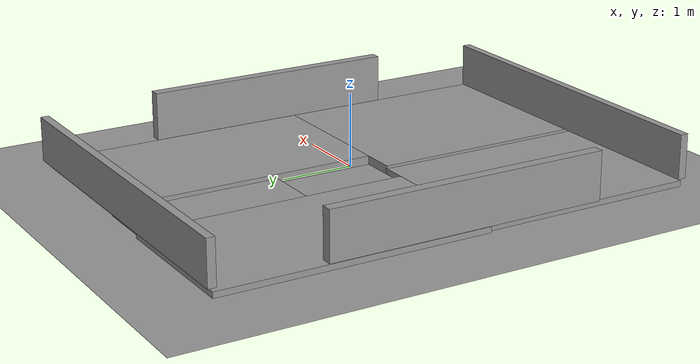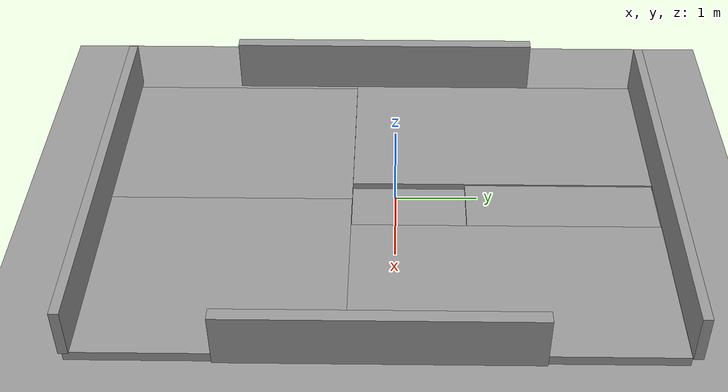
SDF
<?xml version="1.0"?>
<sdf version="1.6">
	<model name="Arena">
		<link name="link_0">
			<inertial>
				<mass>
					0.894395
				</mass>
				<inertia>
					<ixx>
						0.697023
					</ixx>
					<ixy>
						0
					</ixy>
					<ixz>
						0
					</ixz>
					<iyy>
						0.431223
					</iyy>
					<iyz>
						0
					</iyz>
					<izz>
						1.12603
					</izz>
				</inertia>
				<pose frame="">
					0 0 0 0 -0 0
				</pose>
			</inertial>
			<pose frame="">
				-1.2333 -2.05926 -0.176665 0 -0 0
			</pose>
			<visual name="visual">
				<pose frame="">
					0 0 0 0 -0 0
				</pose>
				<geometry>
					<box>
						<size>
							2.40225 3.05565 0.121892
						</size>
					</box>
				</geometry>
				<material>
					<lighting>
						1
					</lighting>
					<script>
						<uri>
							file://media/materials/scripts/gazebo.material
						</uri>
						<name>
							Gazebo/Grey
						</name>
					</script>
					<shader type="pixel" />
				</material>
				<transparency>
					0
				</transparency>
				<cast_shadows>
					1
				</cast_shadows>
			</visual>
			<collision name="collision">
				<laser_retro>
					0
				</laser_retro>
				<max_contacts>
					10
				</max_contacts>
				<pose frame="">
					0 0 0 0 -0 0
				</pose>
				<geometry>
					<box>
						<size>
							2.40225 3.05565 0.121892
						</size>
					</box>
				</geometry>
				<surface>
					<friction>
						<ode>
							<mu>
								1
							</mu>
							<mu2>
								1
							</mu2>
							<fdir1>
								0 0 0
							</fdir1>
							<slip1>
								0
							</slip1>
							<slip2>
								0
							</slip2>
						</ode>
						<torsional>
							<coefficient>
								1
							</coefficient>
							<patch_radius>
								0
							</patch_radius>
							<surface_radius>
								0
							</surface_radius>
							<use_patch_radius>
								1
							</use_patch_radius>
							<ode>
								<slip>
									0
								</slip>
							</ode>
						</torsional>
					</friction>
					<bounce>
						<restitution_coefficient>
							0
						</restitution_coefficient>
						<threshold>
							1e+06
						</threshold>
					</bounce>
					<contact>
						<collide_without_contact>
							0
						</collide_without_contact>
						<collide_without_contact_bitmask>
							1
						</collide_without_contact_bitmask>
						<collide_bitmask>
							1
						</collide_bitmask>
						<ode>
							<soft_cfm>
								0
							</soft_cfm>
							<soft_erp>
								0.2
							</soft_erp>
							<kp>
								1e+13
							</kp>
							<kd>
								1
							</kd>
							<max_vel>
								0.01
							</max_vel>
							<min_depth>
								0
							</min_depth>
						</ode>
						<bullet>
							<split_impulse>
								1
							</split_impulse>
							<split_impulse_penetration_threshold>
								-0.01
							</split_impulse_penetration_threshold>
							<soft_cfm>
								0
							</soft_cfm>
							<soft_erp>
								0.2
							</soft_erp>
							<kp>
								1e+13
							</kp>
							<kd>
								1
							</kd>
						</bullet>
					</contact>
				</surface>
			</collision>
		</link>
		<link name="link_0_clone">
			<inertial>
				<mass>
					0.950872
				</mass>
				<inertia>
					<ixx>
						0.741035
					</ixx>
					<ixy>
						0
					</ixy>
					<ixz>
						0
					</ixz>
					<iyy>
						0.518026
					</iyy>
					<iyz>
						0
					</iyz>
					<izz>
						1.25671
					</izz>
				</inertia>
				<pose frame="">
					0 0 0 0 -0 0
				</pose>
			</inertial>
			<pose frame="">
				1.21262 -2.05926 -0.137138 0 -0 0
			</pose>
			<visual name="visual">
				<pose frame="">
					0 0 0 0 -0 0
				</pose>
				<geometry>
					<box>
						<size>
							2.55394 3.05565 0.121892
						</size>
					</box>
				</geometry>
				<material>
					<lighting>
						1
					</lighting>
					<script>
						<uri>
							file://media/materials/scripts/gazebo.material
						</uri>
						<name>
							Gazebo/Grey
						</name>
					</script>
					<shader type="pixel" />
				</material>
				<transparency>
					0
				</transparency>
				<cast_shadows>
					1
				</cast_shadows>
			</visual>
			<collision name="collision">
				<laser_retro>
					0
				</laser_retro>
				<max_contacts>
					10
				</max_contacts>
				<pose frame="">
					0 0 0 0 -0 0
				</pose>
				<geometry>
					<box>
						<size>
							2.55394 3.05565 0.121892
						</size>
					</box>
				</geometry>
				<surface>
					<friction>
						<ode>
							<mu>
								1
							</mu>
							<mu2>
								1
							</mu2>
							<fdir1>
								0 0 0
							</fdir1>
							<slip1>
								0
							</slip1>
							<slip2>
								0
							</slip2>
						</ode>
						<torsional>
							<coefficient>
								1
							</coefficient>
							<patch_radius>
								0
							</patch_radius>
							<surface_radius>
								0
							</surface_radius>
							<use_patch_radius>
								1
							</use_patch_radius>
							<ode>
								<slip>
									0
								</slip>
							</ode>
						</torsional>
					</friction>
					<bounce>
						<restitution_coefficient>
							0
						</restitution_coefficient>
						<threshold>
							1e+06
						</threshold>
					</bounce>
					<contact>
						<collide_without_contact>
							0
						</collide_without_contact>
						<collide_without_contact_bitmask>
							1
						</collide_without_contact_bitmask>
						<collide_bitmask>
							1
						</collide_bitmask>
						<ode>
							<soft_cfm>
								0
							</soft_cfm>
							<soft_erp>
								0.2
							</soft_erp>
							<kp>
								1e+13
							</kp>
							<kd>
								1
							</kd>
							<max_vel>
								0.01
							</max_vel>
							<min_depth>
								0
							</min_depth>
						</ode>
						<bullet>
							<split_impulse>
								1
							</split_impulse>
							<split_impulse_penetration_threshold>
								-0.01
							</split_impulse_penetration_threshold>
							<soft_cfm>
								0
							</soft_cfm>
							<soft_erp>
								0.2
							</soft_erp>
							<kp>
								1e+13
							</kp>
							<kd>
								1
							</kd>
						</bullet>
					</contact>
				</surface>
			</collision>
		</link>
		<link name="link_0_clone_0">
			<inertial>
				<mass>
					0.961371
				</mass>
				<inertia>
					<ixx>
						1.15454
					</ixx>
					<ixy>
						0
					</ixy>
					<ixz>
						0
					</ixz>
					<iyy>
						0.347627
					</iyy>
					<iyz>
						0
					</iyz>
					<izz>
						1.49979
					</izz>
				</inertia>
				<pose frame="">
					0 0 0 0 -0 0
				</pose>
			</inertial>
			<pose frame="">
				-1.44288 1.36702 -0.176665 0 -0 0
			</pose>
			<visual name="visual">
				<pose frame="">
					0 0 0 0 -0 0
				</pose>
				<geometry>
					<box>
						<size>
							2.07949 3.79426 0.121892
						</size>
					</box>
				</geometry>
				<material>
					<lighting>
						1
					</lighting>
					<script>
						<uri>
							file://media/materials/scripts/gazebo.material
						</uri>
						<name>
							Gazebo/Grey
						</name>
					</script>
					<shader type="pixel" />
				</material>
				<transparency>
					0
				</transparency>
				<cast_shadows>
					1
				</cast_shadows>
			</visual>
			<collision name="collision">
				<laser_retro>
					0
				</laser_retro>
				<max_contacts>
					10
				</max_contacts>
				<pose frame="">
					0 0 0 0 -0 0
				</pose>
				<geometry>
					<box>
						<size>
							2.07949 3.79426 0.121892
						</size>
					</box>
				</geometry>
				<surface>
					<friction>
						<ode>
							<mu>
								1
							</mu>
							<mu2>
								1
							</mu2>
							<fdir1>
								0 0 0
							</fdir1>
							<slip1>
								0
							</slip1>
							<slip2>
								0
							</slip2>
						</ode>
						<torsional>
							<coefficient>
								1
							</coefficient>
							<patch_radius>
								0
							</patch_radius>
							<surface_radius>
								0
							</surface_radius>
							<use_patch_radius>
								1
							</use_patch_radius>
							<ode>
								<slip>
									0
								</slip>
							</ode>
						</torsional>
					</friction>
					<bounce>
						<restitution_coefficient>
							0
						</restitution_coefficient>
						<threshold>
							1e+06
						</threshold>
					</bounce>
					<contact>
						<collide_without_contact>
							0
						</collide_without_contact>
						<collide_without_contact_bitmask>
							1
						</collide_without_contact_bitmask>
						<collide_bitmask>
							1
						</collide_bitmask>
						<ode>
							<soft_cfm>
								0
							</soft_cfm>
							<soft_erp>
								0.2
							</soft_erp>
							<kp>
								1e+13
							</kp>
							<kd>
								1
							</kd>
							<max_vel>
								0.01
							</max_vel>
							<min_depth>
								0
							</min_depth>
						</ode>
						<bullet>
							<split_impulse>
								1
							</split_impulse>
							<split_impulse_penetration_threshold>
								-0.01
							</split_impulse_penetration_threshold>
							<soft_cfm>
								0
							</soft_cfm>
							<soft_erp>
								0.2
							</soft_erp>
							<kp>
								1e+13
							</kp>
							<kd>
								1
							</kd>
						</bullet>
					</contact>
				</surface>
			</collision>
		</link>
		<link name="link_0_clone_0_clone">
			<inertial>
				<mass>
					0.947545
				</mass>
				<inertia>
					<ixx>
						1.10548
					</ixx>
					<ixy>
						0
					</ixy>
					<ixz>
						0
					</ixz>
					<iyy>
						0.342627
					</iyy>
					<iyz>
						0
					</iyz>
					<izz>
						1.44577
					</izz>
				</inertia>
				<pose frame="">
					0 0 0 0 -0 0
				</pose>
			</inertial>
			<pose frame="">
				1.44827 1.33775 -0.137138 0 -0 0
			</pose>
			<visual name="visual">
				<pose frame="">
					0 0 0 0 -0 0
				</pose>
				<geometry>
					<box>
						<size>
							2.07949 3.7397 0.121892
						</size>
					</box>
				</geometry>
				<material>
					<lighting>
						1
					</lighting>
					<script>
						<uri>
							file://media/materials/scripts/gazebo.material
						</uri>
						<name>
							Gazebo/Grey
						</name>
					</script>
					<shader type="pixel" />
				</material>
				<transparency>
					0
				</transparency>
				<cast_shadows>
					1
				</cast_shadows>
			</visual>
			<collision name="collision">
				<laser_retro>
					0
				</laser_retro>
				<max_contacts>
					10
				</max_contacts>
				<pose frame="">
					0 0 0 0 -0 0
				</pose>
				<geometry>
					<box>
						<size>
							2.07949 3.7397 0.121892
						</size>
					</box>
				</geometry>
				<surface>
					<friction>
						<ode>
							<mu>
								1
							</mu>
							<mu2>
								1
							</mu2>
							<fdir1>
								0 0 0
							</fdir1>
							<slip1>
								0
							</slip1>
							<slip2>
								0
							</slip2>
						</ode>
						<torsional>
							<coefficient>
								1
							</coefficient>
							<patch_radius>
								0
							</patch_radius>
							<surface_radius>
								0
							</surface_radius>
							<use_patch_radius>
								1
							</use_patch_radius>
							<ode>
								<slip>
									0
								</slip>
							</ode>
						</torsional>
					</friction>
					<bounce>
						<restitution_coefficient>
							0
						</restitution_coefficient>
						<threshold>
							1e+06
						</threshold>
					</bounce>
					<contact>
						<collide_without_contact>
							0
						</collide_without_contact>
						<collide_without_contact_bitmask>
							1
						</collide_without_contact_bitmask>
						<collide_bitmask>
							1
						</collide_bitmask>
						<ode>
							<soft_cfm>
								0
							</soft_cfm>
							<soft_erp>
								0.2
							</soft_erp>
							<kp>
								1e+13
							</kp>
							<kd>
								1
							</kd>
							<max_vel>
								0.01
							</max_vel>
							<min_depth>
								0
							</min_depth>
						</ode>
						<bullet>
							<split_impulse>
								1
							</split_impulse>
							<split_impulse_penetration_threshold>
								-0.01
							</split_impulse_penetration_threshold>
							<soft_cfm>
								0
							</soft_cfm>
							<soft_erp>
								0.2
							</soft_erp>
							<kp>
								1e+13
							</kp>
							<kd>
								1
							</kd>
						</bullet>
					</contact>
				</surface>
			</collision>
		</link>
		<link name="link_1">
			<inertial>
				<mass>
					0.347411
				</mass>
				<inertia>
					<ixx>
						0.0113032
					</ixx>
					<ixy>
						0
					</ixy>
					<ixz>
						0
					</ixz>
					<iyy>
						0.730602
					</iyy>
					<iyz>
						0
					</iyz>
					<izz>
						0.720043
					</izz>
				</inertia>
				<pose frame="">
					0 0 0 0 -0 0
				</pose>
			</inertial>
			<pose frame="">
				0.015687 -3.56571 0.231802 0 -0 0
			</pose>
			<visual name="visual">
				<pose frame="">
					0 0 0 0 -0 0
				</pose>
				<geometry>
					<box>
						<size>
							4.98581 0.113394 0.614467
						</size>
					</box>
				</geometry>
				<material>
					<lighting>
						1
					</lighting>
					<script>
						<uri>
							file://media/materials/scripts/gazebo.material
						</uri>
						<name>
							Gazebo/Grey
						</name>
					</script>
					<shader type="pixel" />
				</material>
				<transparency>
					0
				</transparency>
				<cast_shadows>
					1
				</cast_shadows>
			</visual>
			<collision name="collision">
				<laser_retro>
					0
				</laser_retro>
				<max_contacts>
					10
				</max_contacts>
				<pose frame="">
					0 0 0 0 -0 0
				</pose>
				<geometry>
					<box>
						<size>
							4.98581 0.113394 0.614467
						</size>
					</box>
				</geometry>
				<surface>
					<friction>
						<ode>
							<mu>
								1
							</mu>
							<mu2>
								1
							</mu2>
							<fdir1>
								0 0 0
							</fdir1>
							<slip1>
								0
							</slip1>
							<slip2>
								0
							</slip2>
						</ode>
						<torsional>
							<coefficient>
								1
							</coefficient>
							<patch_radius>
								0
							</patch_radius>
							<surface_radius>
								0
							</surface_radius>
							<use_patch_radius>
								1
							</use_patch_radius>
							<ode>
								<slip>
									0
								</slip>
							</ode>
						</torsional>
					</friction>
					<bounce>
						<restitution_coefficient>
							0
						</restitution_coefficient>
						<threshold>
							1e+06
						</threshold>
					</bounce>
					<contact>
						<collide_without_contact>
							0
						</collide_without_contact>
						<collide_without_contact_bitmask>
							1
						</collide_without_contact_bitmask>
						<collide_bitmask>
							1
						</collide_bitmask>
						<ode>
							<soft_cfm>
								0
							</soft_cfm>
							<soft_erp>
								0.2
							</soft_erp>
							<kp>
								1e+13
							</kp>
							<kd>
								1
							</kd>
							<max_vel>
								0.01
							</max_vel>
							<min_depth>
								0
							</min_depth>
						</ode>
						<bullet>
							<split_impulse>
								1
							</split_impulse>
							<split_impulse_penetration_threshold>
								-0.01
							</split_impulse_penetration_threshold>
							<soft_cfm>
								0
							</soft_cfm>
							<soft_erp>
								0.2
							</soft_erp>
							<kp>
								1e+13
							</kp>
							<kd>
								1
							</kd>
						</bullet>
					</contact>
				</surface>
			</collision>
		</link>
		<link name="link_1_clone">
			<inertial>
				<mass>
					0.347411
				</mass>
				<inertia>
					<ixx>
						0.0113032
					</ixx>
					<ixy>
						0
					</ixy>
					<ixz>
						0
					</ixz>
					<iyy>
						0.730602
					</iyy>
					<iyz>
						0
					</iyz>
					<izz>
						0.720043
					</izz>
				</inertia>
				<pose frame="">
					0 0 0 0 -0 0
				</pose>
			</inertial>
			<pose frame="">
				0.015685 3.26608 0.231802 0 -0 0
			</pose>
			<visual name="visual">
				<pose frame="">
					0 0 0 0 -0 0
				</pose>
				<geometry>
					<box>
						<size>
							4.98581 0.113394 0.614467
						</size>
					</box>
				</geometry>
				<material>
					<lighting>
						1
					</lighting>
					<script>
						<uri>
							file://media/materials/scripts/gazebo.material
						</uri>
						<name>
							Gazebo/Grey
						</name>
					</script>
					<shader type="pixel" />
				</material>
				<transparency>
					0
				</transparency>
				<cast_shadows>
					1
				</cast_shadows>
			</visual>
			<collision name="collision">
				<laser_retro>
					0
				</laser_retro>
				<max_contacts>
					10
				</max_contacts>
				<pose frame="">
					0 0 0 0 -0 0
				</pose>
				<geometry>
					<box>
						<size>
							4.98581 0.113394 0.614467
						</size>
					</box>
				</geometry>
				<surface>
					<friction>
						<ode>
							<mu>
								1
							</mu>
							<mu2>
								1
							</mu2>
							<fdir1>
								0 0 0
							</fdir1>
							<slip1>
								0
							</slip1>
							<slip2>
								0
							</slip2>
						</ode>
						<torsional>
							<coefficient>
								1
							</coefficient>
							<patch_radius>
								0
							</patch_radius>
							<surface_radius>
								0
							</surface_radius>
							<use_patch_radius>
								1
							</use_patch_radius>
							<ode>
								<slip>
									0
								</slip>
							</ode>
						</torsional>
					</friction>
					<bounce>
						<restitution_coefficient>
							0
						</restitution_coefficient>
						<threshold>
							1e+06
						</threshold>
					</bounce>
					<contact>
						<collide_without_contact>
							0
						</collide_without_contact>
						<collide_without_contact_bitmask>
							1
						</collide_without_contact_bitmask>
						<collide_bitmask>
							1
						</collide_bitmask>
						<ode>
							<soft_cfm>
								0
							</soft_cfm>
							<soft_erp>
								0.2
							</soft_erp>
							<kp>
								1e+13
							</kp>
							<kd>
								1
							</kd>
							<max_vel>
								0.01
							</max_vel>
							<min_depth>
								0
							</min_depth>
						</ode>
						<bullet>
							<split_impulse>
								1
							</split_impulse>
							<split_impulse_penetration_threshold>
								-0.01
							</split_impulse_penetration_threshold>
							<soft_cfm>
								0
							</soft_cfm>
							<soft_erp>
								0.2
							</soft_erp>
							<kp>
								1e+13
							</kp>
							<kd>
								1
							</kd>
						</bullet>
					</contact>
				</surface>
			</collision>
		</link>
		<link name="link_2">
			<inertial>
				<mass>
					0.40033
				</mass>
				<inertia>
					<ixx>
						0.532263
					</ixx>
					<ixy>
						0
					</ixy>
					<ixz>
						0
					</ixz>
					<iyy>
						0.0158846
					</iyy>
					<iyz>
						0
					</iyz>
					<izz>
						0.517898
					</izz>
				</inertia>
				<pose frame="">
					0 0 0 0 -0 0
				</pose>
			</inertial>
			<pose frame="">
				-2.49299 -0.162051 0.26781 0 -0 0
			</pose>
			<visual name="visual">
				<pose frame="">
					0 0 0 0 -0 0
				</pose>
				<geometry>
					<box>
						<size>
							0.150921 3.93718 0.673326
						</size>
					</box>
				</geometry>
				<material>
					<lighting>
						1
					</lighting>
					<script>
						<uri>
							file://media/materials/scripts/gazebo.material
						</uri>
						<name>
							Gazebo/Grey
						</name>
					</script>
					<shader type="pixel" />
				</material>
				<transparency>
					0
				</transparency>
				<cast_shadows>
					1
				</cast_shadows>
			</visual>
			<collision name="collision">
				<laser_retro>
					0
				</laser_retro>
				<max_contacts>
					10
				</max_contacts>
				<pose frame="">
					0 0 0 0 -0 0
				</pose>
				<geometry>
					<box>
						<size>
							0.150921 3.93718 0.673326
						</size>
					</box>
				</geometry>
				<surface>
					<friction>
						<ode>
							<mu>
								1
							</mu>
							<mu2>
								1
							</mu2>
							<fdir1>
								0 0 0
							</fdir1>
							<slip1>
								0
							</slip1>
							<slip2>
								0
							</slip2>
						</ode>
						<torsional>
							<coefficient>
								1
							</coefficient>
							<patch_radius>
								0
							</patch_radius>
							<surface_radius>
								0
							</surface_radius>
							<use_patch_radius>
								1
							</use_patch_radius>
							<ode>
								<slip>
									0
								</slip>
							</ode>
						</torsional>
					</friction>
					<bounce>
						<restitution_coefficient>
							0
						</restitution_coefficient>
						<threshold>
							1e+06
						</threshold>
					</bounce>
					<contact>
						<collide_without_contact>
							0
						</collide_without_contact>
						<collide_without_contact_bitmask>
							1
						</collide_without_contact_bitmask>
						<collide_bitmask>
							1
						</collide_bitmask>
						<ode>
							<soft_cfm>
								0
							</soft_cfm>
							<soft_erp>
								0.2
							</soft_erp>
							<kp>
								1e+13
							</kp>
							<kd>
								1
							</kd>
							<max_vel>
								0.01
							</max_vel>
							<min_depth>
								0
							</min_depth>
						</ode>
						<bullet>
							<split_impulse>
								1
							</split_impulse>
							<split_impulse_penetration_threshold>
								-0.01
							</split_impulse_penetration_threshold>
							<soft_cfm>
								0
							</soft_cfm>
							<soft_erp>
								0.2
							</soft_erp>
							<kp>
								1e+13
							</kp>
							<kd>
								1
							</kd>
						</bullet>
					</contact>
				</surface>
			</collision>
		</link>
		<link name="link_2_clone">
			<inertial>
				<mass>
					0.365406
				</mass>
				<inertia>
					<ixx>
						0.407346
					</ixx>
					<ixy>
						0
					</ixy>
					<ixz>
						0
					</ixz>
					<iyy>
						0.0144988
					</iyy>
					<iyz>
						0
					</iyz>
					<izz>
						0.394235
					</izz>
				</inertia>
				<pose frame="">
					0 0 0 0 -0 0
				</pose>
			</inertial>
			<pose frame="">
				2.54919 -0.153086 0.26781 0 -0 0
			</pose>
			<visual name="visual">
				<pose frame="">
					0 0 0 0 -0 0
				</pose>
				<geometry>
					<box>
						<size>
							0.150921 3.59499 0.673326
						</size>
					</box>
				</geometry>
				<material>
					<lighting>
						1
					</lighting>
					<script>
						<uri>
							file://media/materials/scripts/gazebo.material
						</uri>
						<name>
							Gazebo/Grey
						</name>
					</script>
					<shader type="pixel" />
				</material>
				<transparency>
					0
				</transparency>
				<cast_shadows>
					1
				</cast_shadows>
			</visual>
			<collision name="collision">
				<laser_retro>
					0
				</laser_retro>
				<max_contacts>
					10
				</max_contacts>
				<pose frame="">
					0 0 0 0 -0 0
				</pose>
				<geometry>
					<box>
						<size>
							0.150921 3.59499 0.673326
						</size>
					</box>
				</geometry>
				<surface>
					<friction>
						<ode>
							<mu>
								1
							</mu>
							<mu2>
								1
							</mu2>
							<fdir1>
								0 0 0
							</fdir1>
							<slip1>
								0
							</slip1>
							<slip2>
								0
							</slip2>
						</ode>
						<torsional>
							<coefficient>
								1
							</coefficient>
							<patch_radius>
								0
							</patch_radius>
							<surface_radius>
								0
							</surface_radius>
							<use_patch_radius>
								1
							</use_patch_radius>
							<ode>
								<slip>
									0
								</slip>
							</ode>
						</torsional>
					</friction>
					<bounce>
						<restitution_coefficient>
							0
						</restitution_coefficient>
						<threshold>
							1e+06
						</threshold>
					</bounce>
					<contact>
						<collide_without_contact>
							0
						</collide_without_contact>
						<collide_without_contact_bitmask>
							1
						</collide_without_contact_bitmask>
						<collide_bitmask>
							1
						</collide_bitmask>
						<ode>
							<soft_cfm>
								0
							</soft_cfm>
							<soft_erp>
								0.2
							</soft_erp>
							<kp>
								1e+13
							</kp>
							<kd>
								1
							</kd>
							<max_vel>
								0.01
							</max_vel>
							<min_depth>
								0
							</min_depth>
						</ode>
						<bullet>
							<split_impulse>
								1
							</split_impulse>
							<split_impulse_penetration_threshold>
								-0.01
							</split_impulse_penetration_threshold>
							<soft_cfm>
								0
							</soft_cfm>
							<soft_erp>
								0.2
							</soft_erp>
							<kp>
								1e+13
							</kp>
							<kd>
								1
							</kd>
						</bullet>
					</contact>
				</surface>
			</collision>
		</link>
		<link name="link_3">
			<inertial>
				<mass>
					0.202539
				</mass>
				<inertia>
					<ixx>
						0.0931038
					</ixx>
					<ixy>
						0
					</ixy>
					<ixz>
						0
					</ixz>
					<iyy>
						0.014204
					</iyy>
					<iyz>
						0
					</iyz>
					<izz>
						0.107005
					</izz>
				</inertia>
				<pose frame="">
					0 0 0 0 -0 0
				</pose>
			</inertial>
			<pose frame="">
				-0.015024 2.04631 -0.183463 0 -0 0
			</pose>
			<visual name="visual">
				<pose frame="">
					0 0 0 0 -0 0
				</pose>
				<geometry>
					<box>
						<size>
							0.912461 2.34675 0.094701
						</size>
					</box>
				</geometry>
				<material>
					<lighting>
						1
					</lighting>
					<script>
						<uri>
							file://media/materials/scripts/gazebo.material
						</uri>
						<name>
							Gazebo/Grey
						</name>
					</script>
					<shader type="pixel" />
				</material>
				<transparency>
					0
				</transparency>
				<cast_shadows>
					1
				</cast_shadows>
			</visual>
			<collision name="collision">
				<laser_retro>
					0
				</laser_retro>
				<max_contacts>
					10
				</max_contacts>
				<pose frame="">
					0 0 0 0 -0 0
				</pose>
				<geometry>
					<box>
						<size>
							0.912461 2.34675 0.094701
						</size>
					</box>
				</geometry>
				<surface>
					<friction>
						<ode>
							<mu>
								1
							</mu>
							<mu2>
								1
							</mu2>
							<fdir1>
								0 0 0
							</fdir1>
							<slip1>
								0
							</slip1>
							<slip2>
								0
							</slip2>
						</ode>
						<torsional>
							<coefficient>
								1
							</coefficient>
							<patch_radius>
								0
							</patch_radius>
							<surface_radius>
								0
							</surface_radius>
							<use_patch_radius>
								1
							</use_patch_radius>
							<ode>
								<slip>
									0
								</slip>
							</ode>
						</torsional>
					</friction>
					<bounce>
						<restitution_coefficient>
							0
						</restitution_coefficient>
						<threshold>
							1e+06
						</threshold>
					</bounce>
					<contact>
						<collide_without_contact>
							0
						</collide_without_contact>
						<collide_without_contact_bitmask>
							1
						</collide_without_contact_bitmask>
						<collide_bitmask>
							1
						</collide_bitmask>
						<ode>
							<soft_cfm>
								0
							</soft_cfm>
							<soft_erp>
								0.2
							</soft_erp>
							<kp>
								1e+13
							</kp>
							<kd>
								1
							</kd>
							<max_vel>
								0.01
							</max_vel>
							<min_depth>
								0
							</min_depth>
						</ode>
						<bullet>
							<split_impulse>
								1
							</split_impulse>
							<split_impulse_penetration_threshold>
								-0.01
							</split_impulse_penetration_threshold>
							<soft_cfm>
								0
							</soft_cfm>
							<soft_erp>
								0.2
							</soft_erp>
							<kp>
								1e+13
							</kp>
							<kd>
								1
							</kd>
						</bullet>
					</contact>
				</surface>
			</collision>
		</link>
		<model name="ground_plane">
			<static>
				1
			</static>
			<link name="link">
				<collision name="collision">
					<geometry>
						<plane>
							<normal>
								0 0 1
							</normal>
							<size>
								100 100
							</size>
						</plane>
					</geometry>
					<surface>
						<contact>
							<collide_bitmask>
								65535
							</collide_bitmask>
						</contact>
						<friction>
							<ode>
								<mu>
									100
								</mu>
								<mu2>
									50
								</mu2>
							</ode>
						</friction>
					</surface>
				</collision>
				<visual name="visual">
					<cast_shadows>
						0
					</cast_shadows>
					<geometry>
						<plane>
							<normal>
								0 0 1
							</normal>
							<size>
								100 100
							</size>
						</plane>
					</geometry>
					<material>
						<script>
							<uri>
								file://media/materials/scripts/gazebo.material
							</uri>
							<name>
								Gazebo/Grey
							</name>
						</script>
					</material>
				</visual>
			</link>
			<pose frame="">
				-0.057239 -0.0178 -0.188151 0 -0 0
			</pose>
		</model>
		<static>
			0
		</static>
		<allow_auto_disable>
			1
		</allow_auto_disable>
	</model>
</sdf>
